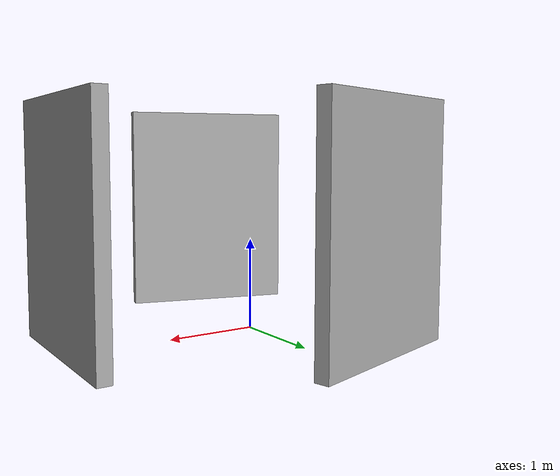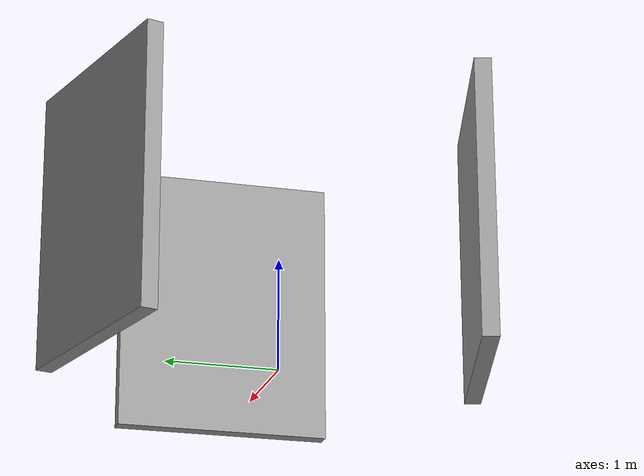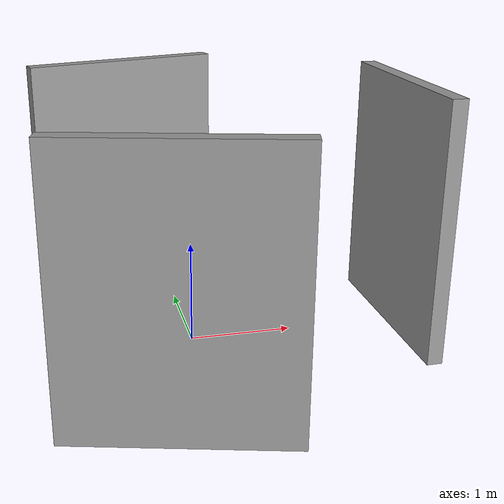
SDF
<?xml version='1.0'?>
<sdf version='1.7'>
  <model name='better_simple_wall'>
    <pose>0.39023 -0.006859 0 0 -0 0</pose>
    <link name='Wall_0'>
      <collision name='Wall_0_Collision'>
        <geometry>
          <box>
            <size>2 0.15 2.5</size>
          </box>
        </geometry>
        <pose>0 0 1.25 0 -0 0</pose>
      </collision>
      <visual name='Wall_0_Visual'>
        <pose>0 0 1.25 0 -0 0</pose>
        <geometry>
          <box>
            <size>2 0.15 2.5</size>
          </box>
        </geometry>
        <material>
          <script>
            <uri>file://media/materials/scripts/gazebo.material</uri>
            <name>Gazebo/Grey</name>
          </script>
          <ambient>1 1 1 1</ambient>
        </material>
        <meta>
          <layer>0</layer>
        </meta>
      </visual>
      <pose>1.71954 0.004581 0 0 -0 -1.5708</pose>
    </link>
    <link name='Wall_2'>
      <collision name='Wall_2_Collision'>
        <geometry>
          <box>
            <size>2 0.15 2.5</size>
          </box>
        </geometry>
        <pose>0 0 1.25 0 -0 0</pose>
      </collision>
      <visual name='Wall_2_Visual'>
        <pose>0 0 1.25 0 -0 0</pose>
        <geometry>
          <box>
            <size>2 0.15 2.5</size>
          </box>
        </geometry>
        <material>
          <script>
            <uri>file://media/materials/scripts/gazebo.material</uri>
            <name>Gazebo/Grey</name>
          </script>
          <ambient>1 1 1 1</ambient>
        </material>
        <meta>
          <layer>0</layer>
        </meta>
      </visual>
      <pose>-0.809206 -1.68506 0 0 -0 -0.261799</pose>
    </link>
    <link name='Wall_4'>
      <collision name='Wall_4_Collision'>
        <geometry>
          <box>
            <size>2 0.15 2.5</size>
          </box>
        </geometry>
        <pose>0 0 1.25 0 -0 0</pose>
      </collision>
      <visual name='Wall_4_Visual'>
        <pose>0 0 1.25 0 -0 0</pose>
        <geometry>
          <box>
            <size>2 0.15 2.5</size>
          </box>
        </geometry>
        <material>
          <script>
            <uri>file://media/materials/scripts/gazebo.material</uri>
            <name>Gazebo/Grey</name>
          </script>
          <ambient>1 1 1 1</ambient>
        </material>
        <meta>
          <layer>0</layer>
        </meta>
      </visual>
      <pose>-0.795069 1.68506 0 0 -0 -2.87979</pose>
    </link>
    <static>1</static>
  </model>
</sdf>
